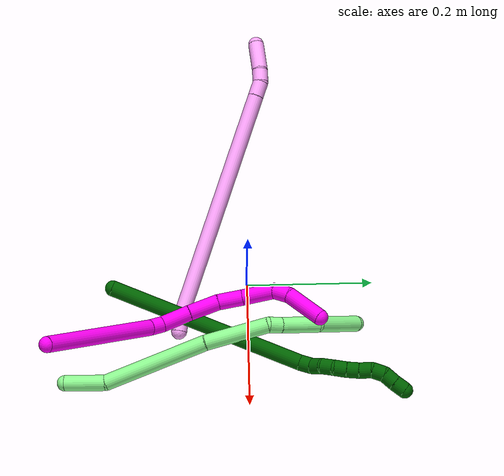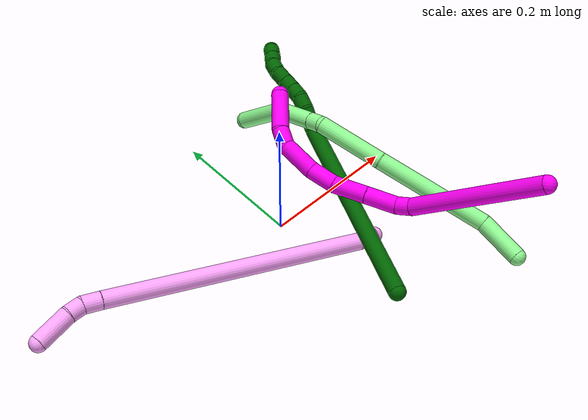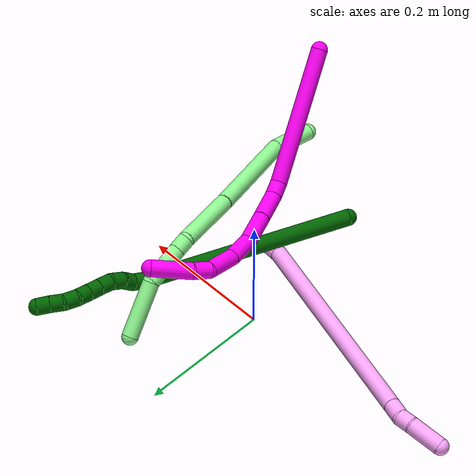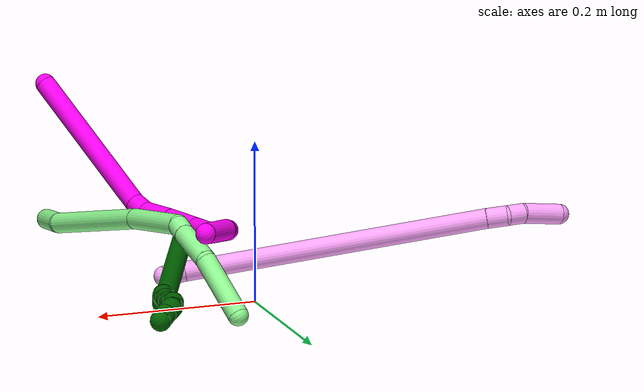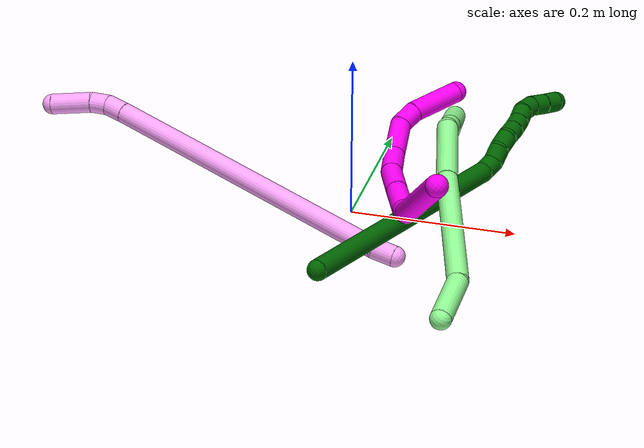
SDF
<sdf version="1.7">
 <world name="default">
  <model name="4">
   <static>0</static>
   <link name="4">
    <collision name="collision-cylinder-e_1_1_4">
     <pose>-0.010393 -0.003518 0.007599 0.433533 -0.892576 -0.209976</pose>
     <geometry><cylinder><radius>0.0125</radius><length>0.026695</length></cylinder></geometry>
     <surface>
      <friction><ode><mu>1.16</mu><mu2>1.16</mu2><slip1>0</slip1><slip2>0</slip2></ode></friction>
      <contact><ode><kp>1e+06</kp><kd>1</kd><max_vel>0</max_vel><min_depth>0.001</min_depth></ode></contact>
     </surface>
    </collision>
    <visual name="visual-cylinder-e_1_1_4">
     <pose>-0.010393 -0.003518 0.007599 0.433533 -0.892576 -0.209976</pose>
     <geometry><cylinder><radius>0.0125</radius><length>0.026695</length></cylinder></geometry>
     <material><ambient>1 0.65098 0.996078 1</ambient></material>
    </visual>
    <collision name="collision-cylinder-e_2_4_5">
     <pose>-0.185767 -0.036052 0.1007 0.327178 -1.07004 -0.19504</pose>
     <geometry><cylinder><radius>0.0125</radius><length>0.376142</length></cylinder></geometry>
     <surface>
      <friction><ode><mu>1.16</mu><mu2>1.16</mu2><slip1>0</slip1><slip2>0</slip2></ode></friction>
      <contact><ode><kp>1e+06</kp><kd>1</kd><max_vel>0</max_vel><min_depth>0.001</min_depth></ode></contact>
     </surface>
    </collision>
    <visual name="visual-cylinder-e_2_4_5">
     <pose>-0.185767 -0.036052 0.1007 0.327178 -1.07004 -0.19504</pose>
     <geometry><cylinder><radius>0.0125</radius><length>0.376142</length></cylinder></geometry>
     <material><ambient>1 0.65098 0.996078 1</ambient></material>
    </visual>
    <collision name="collision-cylinder-e_3_5_6">
     <pose>-0.36195 -0.06746 0.191699 0.410139 -1.07941 -0.247911</pose>
     <geometry><cylinder><radius>0.0125</radius><length>0.025415</length></cylinder></geometry>
     <surface>
      <friction><ode><mu>1.16</mu><mu2>1.16</mu2><slip1>0</slip1><slip2>0</slip2></ode></friction>
      <contact><ode><kp>1e+06</kp><kd>1</kd><max_vel>0</max_vel><min_depth>0.001</min_depth></ode></contact>
     </surface>
    </collision>
    <visual name="visual-cylinder-e_3_5_6">
     <pose>-0.36195 -0.06746 0.191699 0.410139 -1.07941 -0.247911</pose>
     <geometry><cylinder><radius>0.0125</radius><length>0.025415</length></cylinder></geometry>
     <material><ambient>1 0.65098 0.996078 1</ambient></material>
    </visual>
    <collision name="collision-cylinder-e_4_6_7">
     <pose>-0.380272 -0.07461 0.203436 0.651674 -0.736782 -0.259388</pose>
     <geometry><cylinder><radius>0.0125</radius><length>0.021188</length></cylinder></geometry>
     <surface>
      <friction><ode><mu>1.16</mu><mu2>1.16</mu2><slip1>0</slip1><slip2>0</slip2></ode></friction>
      <contact><ode><kp>1e+06</kp><kd>1</kd><max_vel>0</max_vel><min_depth>0.001</min_depth></ode></contact>
     </surface>
    </collision>
    <visual name="visual-cylinder-e_4_6_7">
     <pose>-0.380272 -0.07461 0.203436 0.651674 -0.736782 -0.259388</pose>
     <geometry><cylinder><radius>0.0125</radius><length>0.021188</length></cylinder></geometry>
     <material><ambient>1 0.65098 0.996078 1</ambient></material>
    </visual>
    <collision name="collision-cylinder-e_5_7_2">
     <pose>-0.402773 -0.09493 0.222337 0.887763 -0.654123 -0.319887</pose>
     <geometry><cylinder><radius>0.0125</radius><length>0.050561</length></cylinder></geometry>
     <surface>
      <friction><ode><mu>1.16</mu><mu2>1.16</mu2><slip1>0</slip1><slip2>0</slip2></ode></friction>
      <contact><ode><kp>1e+06</kp><kd>1</kd><max_vel>0</max_vel><min_depth>0.001</min_depth></ode></contact>
     </surface>
    </collision>
    <visual name="visual-cylinder-e_5_7_2">
     <pose>-0.402773 -0.09493 0.222337 0.887763 -0.654123 -0.319887</pose>
     <geometry><cylinder><radius>0.0125</radius><length>0.050561</length></cylinder></geometry>
     <material><ambient>1 0.65098 0.996078 1</ambient></material>
    </visual>
    <collision name="collision-sphere-2">
     <pose>-0.418155 -0.110491 0.234999 0 -0 0</pose>
     <geometry><sphere><radius>0.0125</radius></sphere></geometry>
     <surface>
      <friction><ode><mu>1.16</mu><mu2>1.16</mu2><slip1>0</slip1><slip2>0</slip2></ode></friction>
      <contact><ode><kp>1e+06</kp><kd>1</kd><max_vel>0</max_vel><min_depth>0.001</min_depth></ode></contact>
     </surface>
    </collision>
    <visual name="visual-sphere-2">
     <pose>-0.418155 -0.110491 0.234999 0 -0 0</pose>
     <geometry><sphere><radius>0.0125</radius></sphere></geometry>
     <material><ambient>1 0.65098 0.996078 1</ambient></material>
    </visual>
    <collision name="collision-sphere-7">
     <pose>-0.387391 -0.079369 0.209674 0 -0 0</pose>
     <geometry><sphere><radius>0.0125</radius></sphere></geometry>
     <surface>
      <friction><ode><mu>1.16</mu><mu2>1.16</mu2><slip1>0</slip1><slip2>0</slip2></ode></friction>
      <contact><ode><kp>1e+06</kp><kd>1</kd><max_vel>0</max_vel><min_depth>0.001</min_depth></ode></contact>
     </surface>
    </collision>
    <visual name="visual-sphere-7">
     <pose>-0.387391 -0.079369 0.209674 0 -0 0</pose>
     <geometry><sphere><radius>0.0125</radius></sphere></geometry>
     <material><ambient>1 0.65098 0.996078 1</ambient></material>
    </visual>
    <collision name="collision-sphere-6">
     <pose>-0.373154 -0.069851 0.197198 0 -0 0</pose>
     <geometry><sphere><radius>0.0125</radius></sphere></geometry>
     <surface>
      <friction><ode><mu>1.16</mu><mu2>1.16</mu2><slip1>0</slip1><slip2>0</slip2></ode></friction>
      <contact><ode><kp>1e+06</kp><kd>1</kd><max_vel>0</max_vel><min_depth>0.001</min_depth></ode></contact>
     </surface>
    </collision>
    <visual name="visual-sphere-6">
     <pose>-0.373154 -0.069851 0.197198 0 -0 0</pose>
     <geometry><sphere><radius>0.0125</radius></sphere></geometry>
     <material><ambient>1 0.65098 0.996078 1</ambient></material>
    </visual>
    <collision name="collision-sphere-5">
     <pose>-0.350746 -0.065069 0.1862 0 -0 0</pose>
     <geometry><sphere><radius>0.0125</radius></sphere></geometry>
     <surface>
      <friction><ode><mu>1.16</mu><mu2>1.16</mu2><slip1>0</slip1><slip2>0</slip2></ode></friction>
      <contact><ode><kp>1e+06</kp><kd>1</kd><max_vel>0</max_vel><min_depth>0.001</min_depth></ode></contact>
     </surface>
    </collision>
    <visual name="visual-sphere-5">
     <pose>-0.350746 -0.065069 0.1862 0 -0 0</pose>
     <geometry><sphere><radius>0.0125</radius></sphere></geometry>
     <material><ambient>1 0.65098 0.996078 1</ambient></material>
    </visual>
    <collision name="collision-sphere-1">
     <geometry><sphere><radius>0.0125</radius></sphere></geometry>
     <surface>
      <friction><ode><mu>1.16</mu><mu2>1.16</mu2><slip1>0</slip1><slip2>0</slip2></ode></friction>
      <contact><ode><kp>1e+06</kp><kd>1</kd><max_vel>0</max_vel><min_depth>0.001</min_depth></ode></contact>
     </surface>
    </collision>
    <visual name="visual-sphere-1">
     <geometry><sphere><radius>0.0125</radius></sphere></geometry>
     <material><ambient>1 0.65098 0.996078 1</ambient></material>
    </visual>
    <collision name="collision-sphere-4">
     <pose>-0.020787 -0.007036 0.015199 0 -0 0</pose>
     <geometry><sphere><radius>0.0125</radius></sphere></geometry>
     <surface>
      <friction><ode><mu>1.16</mu><mu2>1.16</mu2><slip1>0</slip1><slip2>0</slip2></ode></friction>
      <contact><ode><kp>1e+06</kp><kd>1</kd><max_vel>0</max_vel><min_depth>0.001</min_depth></ode></contact>
     </surface>
    </collision>
    <visual name="visual-sphere-4">
     <pose>-0.020787 -0.007036 0.015199 0 -0 0</pose>
     <geometry><sphere><radius>0.0125</radius></sphere></geometry>
     <material><ambient>1 0.65098 0.996078 1</ambient></material>
    </visual>
    <inertial>
     <pose>-0.215545 -0.0435 0.117008 0 -0 0</pose>
     <mass>0.5</mass>
     <inertia>
      <ixx>0.001658</ixx>
      <ixy>0</ixy>
      <ixz>0</ixz>
      <iyy>0.003966</iyy>
      <iyz>0</iyz>
      <izz>0.004631</izz>
     </inertia>
    </inertial>
   </link>
   <pose>0.080369 -0.109373 0.011903 0.844909 -0.009752 -0.812643</pose>
  </model>
  <model name="6">
   <static>0</static>
   <link name="6">
    <collision name="collision-cylinder-e_1_1_4">
     <pose>0.077973 0.127933 0.055223 -1.1633 0.510166 -0.339618</pose>
     <geometry><cylinder><radius>0.0125</radius><length>0.319351</length></cylinder></geometry>
     <surface>
      <friction><ode><mu>1.16</mu><mu2>1.16</mu2><slip1>0</slip1><slip2>0</slip2></ode></friction>
      <contact><ode><kp>1e+06</kp><kd>1</kd><max_vel>0</max_vel><min_depth>0.001</min_depth></ode></contact>
     </surface>
    </collision>
    <visual name="visual-cylinder-e_1_1_4">
     <pose>0.077973 0.127933 0.055223 -1.1633 0.510166 -0.339618</pose>
     <geometry><cylinder><radius>0.0125</radius><length>0.319351</length></cylinder></geometry>
     <material><ambient>0 0.392157 0.003922 1</ambient></material>
    </visual>
    <collision name="collision-cylinder-e_2_4_5">
     <pose>0.158961 0.2642 0.115551 -1.0212 0.299256 -0.16849</pose>
     <geometry><cylinder><radius>0.0125</radius><length>0.020455</length></cylinder></geometry>
     <surface>
      <friction><ode><mu>1.16</mu><mu2>1.16</mu2><slip1>0</slip1><slip2>0</slip2></ode></friction>
      <contact><ode><kp>1e+06</kp><kd>1</kd><max_vel>0</max_vel><min_depth>0.001</min_depth></ode></contact>
     </surface>
    </collision>
    <visual name="visual-cylinder-e_2_4_5">
     <pose>0.158961 0.2642 0.115551 -1.0212 0.299256 -0.16849</pose>
     <geometry><cylinder><radius>0.0125</radius><length>0.020455</length></cylinder></geometry>
     <material><ambient>0 0.392157 0.003922 1</ambient></material>
    </visual>
    <collision name="collision-cylinder-e_3_5_6">
     <pose>0.160677 0.279816 0.127507 -0.815898 -0.129256 0.055927</pose>
     <geometry><cylinder><radius>0.0125</radius><length>0.020165</length></cylinder></geometry>
     <surface>
      <friction><ode><mu>1.16</mu><mu2>1.16</mu2><slip1>0</slip1><slip2>0</slip2></ode></friction>
      <contact><ode><kp>1e+06</kp><kd>1</kd><max_vel>0</max_vel><min_depth>0.001</min_depth></ode></contact>
     </surface>
    </collision>
    <visual name="visual-cylinder-e_3_5_6">
     <pose>0.160677 0.279816 0.127507 -0.815898 -0.129256 0.055927</pose>
     <geometry><cylinder><radius>0.0125</radius><length>0.020165</length></cylinder></geometry>
     <material><ambient>0 0.392157 0.003922 1</ambient></material>
    </visual>
    <collision name="collision-cylinder-e_4_6_7">
     <pose>0.160608 0.295505 0.139634 -1.01032 0.123347 -0.068274</pose>
     <geometry><cylinder><radius>0.0125</radius><length>0.020001</length></cylinder></geometry>
     <surface>
      <friction><ode><mu>1.16</mu><mu2>1.16</mu2><slip1>0</slip1><slip2>0</slip2></ode></friction>
      <contact><ode><kp>1e+06</kp><kd>1</kd><max_vel>0</max_vel><min_depth>0.001</min_depth></ode></contact>
     </surface>
    </collision>
    <visual name="visual-cylinder-e_4_6_7">
     <pose>0.160608 0.295505 0.139634 -1.01032 0.123347 -0.068274</pose>
     <geometry><cylinder><radius>0.0125</radius><length>0.020001</length></cylinder></geometry>
     <material><ambient>0 0.392157 0.003922 1</ambient></material>
    </visual>
    <collision name="collision-cylinder-e_5_7_8">
     <pose>0.165028 0.31305 0.147424 -1.30231 0.324573 -0.248245</pose>
     <geometry><cylinder><radius>0.0125</radius><length>0.020002</length></cylinder></geometry>
     <surface>
      <friction><ode><mu>1.16</mu><mu2>1.16</mu2><slip1>0</slip1><slip2>0</slip2></ode></friction>
      <contact><ode><kp>1e+06</kp><kd>1</kd><max_vel>0</max_vel><min_depth>0.001</min_depth></ode></contact>
     </surface>
    </collision>
    <visual name="visual-cylinder-e_5_7_8">
     <pose>0.165028 0.31305 0.147424 -1.30231 0.324573 -0.248245</pose>
     <geometry><cylinder><radius>0.0125</radius><length>0.020002</length></cylinder></geometry>
     <material><ambient>0 0.392157 0.003922 1</ambient></material>
    </visual>
    <collision name="collision-cylinder-e_6_8_9">
     <pose>0.170584 0.331593 0.152403 -1.31445 0.238869 -0.184682</pose>
     <geometry><cylinder><radius>0.0125</radius><length>0.020011</length></cylinder></geometry>
     <surface>
      <friction><ode><mu>1.16</mu><mu2>1.16</mu2><slip1>0</slip1><slip2>0</slip2></ode></friction>
      <contact><ode><kp>1e+06</kp><kd>1</kd><max_vel>0</max_vel><min_depth>0.001</min_depth></ode></contact>
     </surface>
    </collision>
    <visual name="visual-cylinder-e_6_8_9">
     <pose>0.170584 0.331593 0.152403 -1.31445 0.238869 -0.184682</pose>
     <geometry><cylinder><radius>0.0125</radius><length>0.020011</length></cylinder></geometry>
     <material><ambient>0 0.392157 0.003922 1</ambient></material>
    </visual>
    <collision name="collision-cylinder-e_7_9_10">
     <pose>0.173949 0.350547 0.157663 -1.28612 0.099885 -0.074872</pose>
     <geometry><cylinder><radius>0.0125</radius><length>0.020001</length></cylinder></geometry>
     <surface>
      <friction><ode><mu>1.16</mu><mu2>1.16</mu2><slip1>0</slip1><slip2>0</slip2></ode></friction>
      <contact><ode><kp>1e+06</kp><kd>1</kd><max_vel>0</max_vel><min_depth>0.001</min_depth></ode></contact>
     </surface>
    </collision>
    <visual name="visual-cylinder-e_7_9_10">
     <pose>0.173949 0.350547 0.157663 -1.28612 0.099885 -0.074872</pose>
     <geometry><cylinder><radius>0.0125</radius><length>0.020001</length></cylinder></geometry>
     <material><ambient>0 0.392157 0.003922 1</ambient></material>
    </visual>
    <collision name="collision-cylinder-e_8_10_11">
     <pose>0.17945 0.368396 0.163769 -1.19116 0.466895 -0.319527</pose>
     <geometry><cylinder><radius>0.0125</radius><length>0.020013</length></cylinder></geometry>
     <surface>
      <friction><ode><mu>1.16</mu><mu2>1.16</mu2><slip1>0</slip1><slip2>0</slip2></ode></friction>
      <contact><ode><kp>1e+06</kp><kd>1</kd><max_vel>0</max_vel><min_depth>0.001</min_depth></ode></contact>
     </surface>
    </collision>
    <visual name="visual-cylinder-e_8_10_11">
     <pose>0.17945 0.368396 0.163769 -1.19116 0.466895 -0.319527</pose>
     <geometry><cylinder><radius>0.0125</radius><length>0.020013</length></cylinder></geometry>
     <material><ambient>0 0.392157 0.003922 1</ambient></material>
    </visual>
    <collision name="collision-cylinder-e_9_11_12">
     <pose>0.191051 0.38233 0.171309 -0.926928 0.789092 -0.410332</pose>
     <geometry><cylinder><radius>0.0125</radius><length>0.02</length></cylinder></geometry>
     <surface>
      <friction><ode><mu>1.16</mu><mu2>1.16</mu2><slip1>0</slip1><slip2>0</slip2></ode></friction>
      <contact><ode><kp>1e+06</kp><kd>1</kd><max_vel>0</max_vel><min_depth>0.001</min_depth></ode></contact>
     </surface>
    </collision>
    <visual name="visual-cylinder-e_9_11_12">
     <pose>0.191051 0.38233 0.171309 -0.926928 0.789092 -0.410332</pose>
     <geometry><cylinder><radius>0.0125</radius><length>0.02</length></cylinder></geometry>
     <material><ambient>0 0.392157 0.003922 1</ambient></material>
    </visual>
    <collision name="collision-cylinder-e_10_12_2">
     <pose>0.204884 0.394287 0.179367 -1.0263 0.739001 -0.42974</pose>
     <geometry><cylinder><radius>0.0125</radius><length>0.020001</length></cylinder></geometry>
     <surface>
      <friction><ode><mu>1.16</mu><mu2>1.16</mu2><slip1>0</slip1><slip2>0</slip2></ode></friction>
      <contact><ode><kp>1e+06</kp><kd>1</kd><max_vel>0</max_vel><min_depth>0.001</min_depth></ode></contact>
     </surface>
    </collision>
    <visual name="visual-cylinder-e_10_12_2">
     <pose>0.204884 0.394287 0.179367 -1.0263 0.739001 -0.42974</pose>
     <geometry><cylinder><radius>0.0125</radius><length>0.020001</length></cylinder></geometry>
     <material><ambient>0 0.392157 0.003922 1</ambient></material>
    </visual>
    <collision name="collision-sphere-2">
     <pose>0.21162 0.40061 0.183196 0 -0 0</pose>
     <geometry><sphere><radius>0.0125</radius></sphere></geometry>
     <surface>
      <friction><ode><mu>1.16</mu><mu2>1.16</mu2><slip1>0</slip1><slip2>0</slip2></ode></friction>
      <contact><ode><kp>1e+06</kp><kd>1</kd><max_vel>0</max_vel><min_depth>0.001</min_depth></ode></contact>
     </surface>
    </collision>
    <visual name="visual-sphere-2">
     <pose>0.21162 0.40061 0.183196 0 -0 0</pose>
     <geometry><sphere><radius>0.0125</radius></sphere></geometry>
     <material><ambient>0 0.392157 0.003922 1</ambient></material>
    </visual>
    <collision name="collision-sphere-12">
     <pose>0.198149 0.387964 0.175538 0 -0 0</pose>
     <geometry><sphere><radius>0.0125</radius></sphere></geometry>
     <surface>
      <friction><ode><mu>1.16</mu><mu2>1.16</mu2><slip1>0</slip1><slip2>0</slip2></ode></friction>
      <contact><ode><kp>1e+06</kp><kd>1</kd><max_vel>0</max_vel><min_depth>0.001</min_depth></ode></contact>
     </surface>
    </collision>
    <visual name="visual-sphere-12">
     <pose>0.198149 0.387964 0.175538 0 -0 0</pose>
     <geometry><sphere><radius>0.0125</radius></sphere></geometry>
     <material><ambient>0 0.392157 0.003922 1</ambient></material>
    </visual>
    <collision name="collision-sphere-11">
     <pose>0.183954 0.376695 0.16708 0 -0 0</pose>
     <geometry><sphere><radius>0.0125</radius></sphere></geometry>
     <surface>
      <friction><ode><mu>1.16</mu><mu2>1.16</mu2><slip1>0</slip1><slip2>0</slip2></ode></friction>
      <contact><ode><kp>1e+06</kp><kd>1</kd><max_vel>0</max_vel><min_depth>0.001</min_depth></ode></contact>
     </surface>
    </collision>
    <visual name="visual-sphere-11">
     <pose>0.183954 0.376695 0.16708 0 -0 0</pose>
     <geometry><sphere><radius>0.0125</radius></sphere></geometry>
     <material><ambient>0 0.392157 0.003922 1</ambient></material>
    </visual>
    <collision name="collision-sphere-10">
     <pose>0.174946 0.360097 0.160457 0 -0 0</pose>
     <geometry><sphere><radius>0.0125</radius></sphere></geometry>
     <surface>
      <friction><ode><mu>1.16</mu><mu2>1.16</mu2><slip1>0</slip1><slip2>0</slip2></ode></friction>
      <contact><ode><kp>1e+06</kp><kd>1</kd><max_vel>0</max_vel><min_depth>0.001</min_depth></ode></contact>
     </surface>
    </collision>
    <visual name="visual-sphere-10">
     <pose>0.174946 0.360097 0.160457 0 -0 0</pose>
     <geometry><sphere><radius>0.0125</radius></sphere></geometry>
     <material><ambient>0 0.392157 0.003922 1</ambient></material>
    </visual>
    <collision name="collision-sphere-9">
     <pose>0.172951 0.340997 0.154868 0 -0 0</pose>
     <geometry><sphere><radius>0.0125</radius></sphere></geometry>
     <surface>
      <friction><ode><mu>1.16</mu><mu2>1.16</mu2><slip1>0</slip1><slip2>0</slip2></ode></friction>
      <contact><ode><kp>1e+06</kp><kd>1</kd><max_vel>0</max_vel><min_depth>0.001</min_depth></ode></contact>
     </surface>
    </collision>
    <visual name="visual-sphere-9">
     <pose>0.172951 0.340997 0.154868 0 -0 0</pose>
     <geometry><sphere><radius>0.0125</radius></sphere></geometry>
     <material><ambient>0 0.392157 0.003922 1</ambient></material>
    </visual>
    <collision name="collision-sphere-4">
     <pose>0.155946 0.255867 0.110446 0 -0 0</pose>
     <geometry><sphere><radius>0.0125</radius></sphere></geometry>
     <surface>
      <friction><ode><mu>1.16</mu><mu2>1.16</mu2><slip1>0</slip1><slip2>0</slip2></ode></friction>
      <contact><ode><kp>1e+06</kp><kd>1</kd><max_vel>0</max_vel><min_depth>0.001</min_depth></ode></contact>
     </surface>
    </collision>
    <visual name="visual-sphere-4">
     <pose>0.155946 0.255867 0.110446 0 -0 0</pose>
     <geometry><sphere><radius>0.0125</radius></sphere></geometry>
     <material><ambient>0 0.392157 0.003922 1</ambient></material>
    </visual>
    <collision name="collision-sphere-1">
     <geometry><sphere><radius>0.0125</radius></sphere></geometry>
     <surface>
      <friction><ode><mu>1.16</mu><mu2>1.16</mu2><slip1>0</slip1><slip2>0</slip2></ode></friction>
      <contact><ode><kp>1e+06</kp><kd>1</kd><max_vel>0</max_vel><min_depth>0.001</min_depth></ode></contact>
     </surface>
    </collision>
    <visual name="visual-sphere-1">
     <geometry><sphere><radius>0.0125</radius></sphere></geometry>
     <material><ambient>0 0.392157 0.003922 1</ambient></material>
    </visual>
    <collision name="collision-sphere-8">
     <pose>0.168217 0.322189 0.149938 0 -0 0</pose>
     <geometry><sphere><radius>0.0125</radius></sphere></geometry>
     <surface>
      <friction><ode><mu>1.16</mu><mu2>1.16</mu2><slip1>0</slip1><slip2>0</slip2></ode></friction>
      <contact><ode><kp>1e+06</kp><kd>1</kd><max_vel>0</max_vel><min_depth>0.001</min_depth></ode></contact>
     </surface>
    </collision>
    <visual name="visual-sphere-8">
     <pose>0.168217 0.322189 0.149938 0 -0 0</pose>
     <geometry><sphere><radius>0.0125</radius></sphere></geometry>
     <material><ambient>0 0.392157 0.003922 1</ambient></material>
    </visual>
    <collision name="collision-sphere-5">
     <pose>0.161977 0.272534 0.120656 0 -0 0</pose>
     <geometry><sphere><radius>0.0125</radius></sphere></geometry>
     <surface>
      <friction><ode><mu>1.16</mu><mu2>1.16</mu2><slip1>0</slip1><slip2>0</slip2></ode></friction>
      <contact><ode><kp>1e+06</kp><kd>1</kd><max_vel>0</max_vel><min_depth>0.001</min_depth></ode></contact>
     </surface>
    </collision>
    <visual name="visual-sphere-5">
     <pose>0.161977 0.272534 0.120656 0 -0 0</pose>
     <geometry><sphere><radius>0.0125</radius></sphere></geometry>
     <material><ambient>0 0.392157 0.003922 1</ambient></material>
    </visual>
    <collision name="collision-sphere-6">
     <pose>0.159377 0.287099 0.134358 0 -0 0</pose>
     <geometry><sphere><radius>0.0125</radius></sphere></geometry>
     <surface>
      <friction><ode><mu>1.16</mu><mu2>1.16</mu2><slip1>0</slip1><slip2>0</slip2></ode></friction>
      <contact><ode><kp>1e+06</kp><kd>1</kd><max_vel>0</max_vel><min_depth>0.001</min_depth></ode></contact>
     </surface>
    </collision>
    <visual name="visual-sphere-6">
     <pose>0.159377 0.287099 0.134358 0 -0 0</pose>
     <geometry><sphere><radius>0.0125</radius></sphere></geometry>
     <material><ambient>0 0.392157 0.003922 1</ambient></material>
    </visual>
    <collision name="collision-sphere-7">
     <pose>0.161838 0.303911 0.14491 0 -0 0</pose>
     <geometry><sphere><radius>0.0125</radius></sphere></geometry>
     <surface>
      <friction><ode><mu>1.16</mu><mu2>1.16</mu2><slip1>0</slip1><slip2>0</slip2></ode></friction>
      <contact><ode><kp>1e+06</kp><kd>1</kd><max_vel>0</max_vel><min_depth>0.001</min_depth></ode></contact>
     </surface>
    </collision>
    <visual name="visual-sphere-7">
     <pose>0.161838 0.303911 0.14491 0 -0 0</pose>
     <geometry><sphere><radius>0.0125</radius></sphere></geometry>
     <material><ambient>0 0.392157 0.003922 1</ambient></material>
    </visual>
    <inertial>
     <pose>0.112617 0.201253 0.089612 0 -0 0</pose>
     <mass>0.5</mass>
     <inertia>
      <ixx>0.001477</ixx>
      <ixy>0</ixy>
      <ixz>0</ixz>
      <iyy>0.000669</iyy>
      <iyz>0</iyz>
      <izz>-0.003516</izz>
     </inertia>
    </inertial>
   </link>
   <pose>0.016632 -0.212682 0.042211 0.129451 0.777028 0.312955</pose>
  </model>
  <model name="10">
   <static>0</static>
   <link name="10">
    <collision name="collision-cylinder-e_1_1_4">
     <pose>-0.033069 0.090934 -0.033218 -1.92103 -0.329153 0.46632</pose>
     <geometry><cylinder><radius>0.0125</radius><length>0.204607</length></cylinder></geometry>
     <surface>
      <friction><ode><mu>1.16</mu><mu2>1.16</mu2><slip1>0</slip1><slip2>0</slip2></ode></friction>
      <contact><ode><kp>1e+06</kp><kd>1</kd><max_vel>0</max_vel><min_depth>0.001</min_depth></ode></contact>
     </surface>
    </collision>
    <visual name="visual-cylinder-e_1_1_4">
     <pose>-0.033069 0.090934 -0.033218 -1.92103 -0.329153 0.46632</pose>
     <geometry><cylinder><radius>0.0125</radius><length>0.204607</length></cylinder></geometry>
     <material><ambient>1 0 0.964706 1</ambient></material>
    </visual>
    <collision name="collision-cylinder-e_2_4_5">
     <pose>-0.071653 0.191394 -0.067666 -1.69924 -0.521275 0.589085</pose>
     <geometry><cylinder><radius>0.0125</radius><length>0.022152</length></cylinder></geometry>
     <surface>
      <friction><ode><mu>1.16</mu><mu2>1.16</mu2><slip1>0</slip1><slip2>0</slip2></ode></friction>
      <contact><ode><kp>1e+06</kp><kd>1</kd><max_vel>0</max_vel><min_depth>0.001</min_depth></ode></contact>
     </surface>
    </collision>
    <visual name="visual-cylinder-e_2_4_5">
     <pose>-0.071653 0.191394 -0.067666 -1.69924 -0.521275 0.589085</pose>
     <geometry><cylinder><radius>0.0125</radius><length>0.022152</length></cylinder></geometry>
     <material><ambient>1 0 0.964706 1</ambient></material>
    </visual>
    <collision name="collision-cylinder-e_3_5_6">
     <pose>-0.092792 0.217107 -0.065337 -1.35439 -0.755886 0.617998</pose>
     <geometry><cylinder><radius>0.0125</radius><length>0.045554</length></cylinder></geometry>
     <surface>
      <friction><ode><mu>1.16</mu><mu2>1.16</mu2><slip1>0</slip1><slip2>0</slip2></ode></friction>
      <contact><ode><kp>1e+06</kp><kd>1</kd><max_vel>0</max_vel><min_depth>0.001</min_depth></ode></contact>
     </surface>
    </collision>
    <visual name="visual-cylinder-e_3_5_6">
     <pose>-0.092792 0.217107 -0.065337 -1.35439 -0.755886 0.617998</pose>
     <geometry><cylinder><radius>0.0125</radius><length>0.045554</length></cylinder></geometry>
     <material><ambient>1 0 0.964706 1</ambient></material>
    </visual>
    <collision name="collision-cylinder-e_4_6_7">
     <pose>-0.124292 0.251066 -0.058223 -1.37336 -0.719399 0.598074</pose>
     <geometry><cylinder><radius>0.0125</radius><length>0.048189</length></cylinder></geometry>
     <surface>
      <friction><ode><mu>1.16</mu><mu2>1.16</mu2><slip1>0</slip1><slip2>0</slip2></ode></friction>
      <contact><ode><kp>1e+06</kp><kd>1</kd><max_vel>0</max_vel><min_depth>0.001</min_depth></ode></contact>
     </surface>
    </collision>
    <visual name="visual-cylinder-e_4_6_7">
     <pose>-0.124292 0.251066 -0.058223 -1.37336 -0.719399 0.598074</pose>
     <geometry><cylinder><radius>0.0125</radius><length>0.048189</length></cylinder></geometry>
     <material><ambient>1 0 0.964706 1</ambient></material>
    </visual>
    <collision name="collision-cylinder-e_5_7_8">
     <pose>-0.151053 0.28395 -0.047744 -1.14118 -0.57976 0.378299</pose>
     <geometry><cylinder><radius>0.0125</radius><length>0.039739</length></cylinder></geometry>
     <surface>
      <friction><ode><mu>1.16</mu><mu2>1.16</mu2><slip1>0</slip1><slip2>0</slip2></ode></friction>
      <contact><ode><kp>1e+06</kp><kd>1</kd><max_vel>0</max_vel><min_depth>0.001</min_depth></ode></contact>
     </surface>
    </collision>
    <visual name="visual-cylinder-e_5_7_8">
     <pose>-0.151053 0.28395 -0.047744 -1.14118 -0.57976 0.378299</pose>
     <geometry><cylinder><radius>0.0125</radius><length>0.039739</length></cylinder></geometry>
     <material><ambient>1 0 0.964706 1</ambient></material>
    </visual>
    <collision name="collision-cylinder-e_6_8_9">
     <pose>-0.176506 0.314614 -0.026577 -0.829249 -0.604517 0.272779</pose>
     <geometry><cylinder><radius>0.0125</radius><length>0.051262</length></cylinder></geometry>
     <surface>
      <friction><ode><mu>1.16</mu><mu2>1.16</mu2><slip1>0</slip1><slip2>0</slip2></ode></friction>
      <contact><ode><kp>1e+06</kp><kd>1</kd><max_vel>0</max_vel><min_depth>0.001</min_depth></ode></contact>
     </surface>
    </collision>
    <visual name="visual-cylinder-e_6_8_9">
     <pose>-0.176506 0.314614 -0.026577 -0.829249 -0.604517 0.272779</pose>
     <geometry><cylinder><radius>0.0125</radius><length>0.051262</length></cylinder></geometry>
     <material><ambient>1 0 0.964706 1</ambient></material>
    </visual>
    <collision name="collision-cylinder-e_7_9_10">
     <pose>-0.192728 0.338331 -0.002143 -0.675558 -0.125987 0.044303</pose>
     <geometry><cylinder><radius>0.0125</radius><length>0.026325</length></cylinder></geometry>
     <surface>
      <friction><ode><mu>1.16</mu><mu2>1.16</mu2><slip1>0</slip1><slip2>0</slip2></ode></friction>
      <contact><ode><kp>1e+06</kp><kd>1</kd><max_vel>0</max_vel><min_depth>0.001</min_depth></ode></contact>
     </surface>
    </collision>
    <visual name="visual-cylinder-e_7_9_10">
     <pose>-0.192728 0.338331 -0.002143 -0.675558 -0.125987 0.044303</pose>
     <geometry><cylinder><radius>0.0125</radius><length>0.026325</length></cylinder></geometry>
     <material><ambient>1 0 0.964706 1</ambient></material>
    </visual>
    <collision name="collision-cylinder-e_8_10_2">
     <pose>-0.188626 0.365308 0.032117 -0.663388 0.186225 -0.064303</pose>
     <geometry><cylinder><radius>0.0125</radius><length>0.062172</length></cylinder></geometry>
     <surface>
      <friction><ode><mu>1.16</mu><mu2>1.16</mu2><slip1>0</slip1><slip2>0</slip2></ode></friction>
      <contact><ode><kp>1e+06</kp><kd>1</kd><max_vel>0</max_vel><min_depth>0.001</min_depth></ode></contact>
     </surface>
    </collision>
    <visual name="visual-cylinder-e_8_10_2">
     <pose>-0.188626 0.365308 0.032117 -0.663388 0.186225 -0.064303</pose>
     <geometry><cylinder><radius>0.0125</radius><length>0.062172</length></cylinder></geometry>
     <material><ambient>1 0 0.964706 1</ambient></material>
    </visual>
    <collision name="collision-sphere-2">
     <pose>-0.182871 0.38412 0.056187 0 -0 0</pose>
     <geometry><sphere><radius>0.0125</radius></sphere></geometry>
     <surface>
      <friction><ode><mu>1.16</mu><mu2>1.16</mu2><slip1>0</slip1><slip2>0</slip2></ode></friction>
      <contact><ode><kp>1e+06</kp><kd>1</kd><max_vel>0</max_vel><min_depth>0.001</min_depth></ode></contact>
     </surface>
    </collision>
    <visual name="visual-sphere-2">
     <pose>-0.182871 0.38412 0.056187 0 -0 0</pose>
     <geometry><sphere><radius>0.0125</radius></sphere></geometry>
     <material><ambient>1 0 0.964706 1</ambient></material>
    </visual>
    <collision name="collision-sphere-10">
     <pose>-0.194382 0.346497 0.008048 0 -0 0</pose>
     <geometry><sphere><radius>0.0125</radius></sphere></geometry>
     <surface>
      <friction><ode><mu>1.16</mu><mu2>1.16</mu2><slip1>0</slip1><slip2>0</slip2></ode></friction>
      <contact><ode><kp>1e+06</kp><kd>1</kd><max_vel>0</max_vel><min_depth>0.001</min_depth></ode></contact>
     </surface>
    </collision>
    <visual name="visual-sphere-10">
     <pose>-0.194382 0.346497 0.008048 0 -0 0</pose>
     <geometry><sphere><radius>0.0125</radius></sphere></geometry>
     <material><ambient>1 0 0.964706 1</ambient></material>
    </visual>
    <collision name="collision-sphere-9">
     <pose>-0.191074 0.330165 -0.012333 0 -0 0</pose>
     <geometry><sphere><radius>0.0125</radius></sphere></geometry>
     <surface>
      <friction><ode><mu>1.16</mu><mu2>1.16</mu2><slip1>0</slip1><slip2>0</slip2></ode></friction>
      <contact><ode><kp>1e+06</kp><kd>1</kd><max_vel>0</max_vel><min_depth>0.001</min_depth></ode></contact>
     </surface>
    </collision>
    <visual name="visual-sphere-9">
     <pose>-0.191074 0.330165 -0.012333 0 -0 0</pose>
     <geometry><sphere><radius>0.0125</radius></sphere></geometry>
     <material><ambient>1 0 0.964706 1</ambient></material>
    </visual>
    <collision name="collision-sphere-4">
     <pose>-0.066137 0.181869 -0.066435 0 -0 0</pose>
     <geometry><sphere><radius>0.0125</radius></sphere></geometry>
     <surface>
      <friction><ode><mu>1.16</mu><mu2>1.16</mu2><slip1>0</slip1><slip2>0</slip2></ode></friction>
      <contact><ode><kp>1e+06</kp><kd>1</kd><max_vel>0</max_vel><min_depth>0.001</min_depth></ode></contact>
     </surface>
    </collision>
    <visual name="visual-sphere-4">
     <pose>-0.066137 0.181869 -0.066435 0 -0 0</pose>
     <geometry><sphere><radius>0.0125</radius></sphere></geometry>
     <material><ambient>1 0 0.964706 1</ambient></material>
    </visual>
    <collision name="collision-sphere-1">
     <geometry><sphere><radius>0.0125</radius></sphere></geometry>
     <surface>
      <friction><ode><mu>1.16</mu><mu2>1.16</mu2><slip1>0</slip1><slip2>0</slip2></ode></friction>
      <contact><ode><kp>1e+06</kp><kd>1</kd><max_vel>0</max_vel><min_depth>0.001</min_depth></ode></contact>
     </surface>
    </collision>
    <visual name="visual-sphere-1">
     <geometry><sphere><radius>0.0125</radius></sphere></geometry>
     <material><ambient>1 0 0.964706 1</ambient></material>
    </visual>
    <collision name="collision-sphere-8">
     <pose>-0.161938 0.299062 -0.040821 0 -0 0</pose>
     <geometry><sphere><radius>0.0125</radius></sphere></geometry>
     <surface>
      <friction><ode><mu>1.16</mu><mu2>1.16</mu2><slip1>0</slip1><slip2>0</slip2></ode></friction>
      <contact><ode><kp>1e+06</kp><kd>1</kd><max_vel>0</max_vel><min_depth>0.001</min_depth></ode></contact>
     </surface>
    </collision>
    <visual name="visual-sphere-8">
     <pose>-0.161938 0.299062 -0.040821 0 -0 0</pose>
     <geometry><sphere><radius>0.0125</radius></sphere></geometry>
     <material><ambient>1 0 0.964706 1</ambient></material>
    </visual>
    <collision name="collision-sphere-5">
     <pose>-0.077169 0.20092 -0.068896 0 -0 0</pose>
     <geometry><sphere><radius>0.0125</radius></sphere></geometry>
     <surface>
      <friction><ode><mu>1.16</mu><mu2>1.16</mu2><slip1>0</slip1><slip2>0</slip2></ode></friction>
      <contact><ode><kp>1e+06</kp><kd>1</kd><max_vel>0</max_vel><min_depth>0.001</min_depth></ode></contact>
     </surface>
    </collision>
    <visual name="visual-sphere-5">
     <pose>-0.077169 0.20092 -0.068896 0 -0 0</pose>
     <geometry><sphere><radius>0.0125</radius></sphere></geometry>
     <material><ambient>1 0 0.964706 1</ambient></material>
    </visual>
    <collision name="collision-sphere-6">
     <pose>-0.108415 0.233295 -0.061778 0 -0 0</pose>
     <geometry><sphere><radius>0.0125</radius></sphere></geometry>
     <surface>
      <friction><ode><mu>1.16</mu><mu2>1.16</mu2><slip1>0</slip1><slip2>0</slip2></ode></friction>
      <contact><ode><kp>1e+06</kp><kd>1</kd><max_vel>0</max_vel><min_depth>0.001</min_depth></ode></contact>
     </surface>
    </collision>
    <visual name="visual-sphere-6">
     <pose>-0.108415 0.233295 -0.061778 0 -0 0</pose>
     <geometry><sphere><radius>0.0125</radius></sphere></geometry>
     <material><ambient>1 0 0.964706 1</ambient></material>
    </visual>
    <collision name="collision-sphere-7">
     <pose>-0.140168 0.268838 -0.054668 0 -0 0</pose>
     <geometry><sphere><radius>0.0125</radius></sphere></geometry>
     <surface>
      <friction><ode><mu>1.16</mu><mu2>1.16</mu2><slip1>0</slip1><slip2>0</slip2></ode></friction>
      <contact><ode><kp>1e+06</kp><kd>1</kd><max_vel>0</max_vel><min_depth>0.001</min_depth></ode></contact>
     </surface>
    </collision>
    <visual name="visual-sphere-7">
     <pose>-0.140168 0.268838 -0.054668 0 -0 0</pose>
     <geometry><sphere><radius>0.0125</radius></sphere></geometry>
     <material><ambient>1 0 0.964706 1</ambient></material>
    </visual>
    <inertial>
     <pose>-0.100843 0.207729 -0.030794 0 -0 0</pose>
     <mass>0.5</mass>
     <inertia>
      <ixx>0.000971</ixx>
      <ixy>0</ixy>
      <ixz>0</ixz>
      <iyy>0.000273</iyy>
      <iyz>0</iyz>
      <izz>-0.000427</izz>
     </inertia>
    </inertial>
   </link>
   <pose>0.169668 -0.302922 0.218959 -0.640768 0.409411 -0.448661</pose>
  </model>
  <model name="13">
   <static>0</static>
   <link name="13">
    <collision name="collision-cylinder-e_1_1_4">
     <pose>-0.000461 0.032446 0.002492 -1.49414 -0.014164 0.013118</pose>
     <geometry><cylinder><radius>0.0125</radius><length>0.06509</length></cylinder></geometry>
     <surface>
      <friction><ode><mu>1.16</mu><mu2>1.16</mu2><slip1>0</slip1><slip2>0</slip2></ode></friction>
      <contact><ode><kp>1e+06</kp><kd>1</kd><max_vel>0</max_vel><min_depth>0.001</min_depth></ode></contact>
     </surface>
    </collision>
    <visual name="visual-cylinder-e_1_1_4">
     <pose>-0.000461 0.032446 0.002492 -1.49414 -0.014164 0.013118</pose>
     <geometry><cylinder><radius>0.0125</radius><length>0.06509</length></cylinder></geometry>
     <material><ambient>0.564706 0.984314 0.572549 1</ambient></material>
    </visual>
    <collision name="collision-cylinder-e_2_4_5">
     <pose>-0.031052 0.143234 0.002646 -1.60064 -0.367012 0.377871</pose>
     <geometry><cylinder><radius>0.0125</radius><length>0.167936</length></cylinder></geometry>
     <surface>
      <friction><ode><mu>1.16</mu><mu2>1.16</mu2><slip1>0</slip1><slip2>0</slip2></ode></friction>
      <contact><ode><kp>1e+06</kp><kd>1</kd><max_vel>0</max_vel><min_depth>0.001</min_depth></ode></contact>
     </surface>
    </collision>
    <visual name="visual-cylinder-e_2_4_5">
     <pose>-0.031052 0.143234 0.002646 -1.60064 -0.367012 0.377871</pose>
     <geometry><cylinder><radius>0.0125</radius><length>0.167936</length></cylinder></geometry>
     <material><ambient>0.564706 0.984314 0.572549 1</ambient></material>
    </visual>
    <collision name="collision-cylinder-e_3_5_6">
     <pose>-0.073835 0.270145 -0.003509 -1.64922 -0.2541 0.2746</pose>
     <geometry><cylinder><radius>0.0125</radius><length>0.10067</length></cylinder></geometry>
     <surface>
      <friction><ode><mu>1.16</mu><mu2>1.16</mu2><slip1>0</slip1><slip2>0</slip2></ode></friction>
      <contact><ode><kp>1e+06</kp><kd>1</kd><max_vel>0</max_vel><min_depth>0.001</min_depth></ode></contact>
     </surface>
    </collision>
    <visual name="visual-cylinder-e_3_5_6">
     <pose>-0.073835 0.270145 -0.003509 -1.64922 -0.2541 0.2746</pose>
     <geometry><cylinder><radius>0.0125</radius><length>0.10067</length></cylinder></geometry>
     <material><ambient>0.564706 0.984314 0.572549 1</ambient></material>
    </visual>
    <collision name="collision-cylinder-e_4_6_7">
     <pose>-0.085382 0.328303 -0.011563 -1.9869 0.105152 -0.161228</pose>
     <geometry><cylinder><radius>0.0125</radius><length>0.021085</length></cylinder></geometry>
     <surface>
      <friction><ode><mu>1.16</mu><mu2>1.16</mu2><slip1>0</slip1><slip2>0</slip2></ode></friction>
      <contact><ode><kp>1e+06</kp><kd>1</kd><max_vel>0</max_vel><min_depth>0.001</min_depth></ode></contact>
     </surface>
    </collision>
    <visual name="visual-cylinder-e_4_6_7">
     <pose>-0.085382 0.328303 -0.011563 -1.9869 0.105152 -0.161228</pose>
     <geometry><cylinder><radius>0.0125</radius><length>0.021085</length></cylinder></geometry>
     <material><ambient>0.564706 0.984314 0.572549 1</ambient></material>
    </visual>
    <collision name="collision-cylinder-e_5_7_8">
     <pose>-0.082722 0.365938 -0.028034 -1.9821 0.050715 -0.077429</pose>
     <geometry><cylinder><radius>0.0125</radius><length>0.061273</length></cylinder></geometry>
     <surface>
      <friction><ode><mu>1.16</mu><mu2>1.16</mu2><slip1>0</slip1><slip2>0</slip2></ode></friction>
      <contact><ode><kp>1e+06</kp><kd>1</kd><max_vel>0</max_vel><min_depth>0.001</min_depth></ode></contact>
     </surface>
    </collision>
    <visual name="visual-cylinder-e_5_7_8">
     <pose>-0.082722 0.365938 -0.028034 -1.9821 0.050715 -0.077429</pose>
     <geometry><cylinder><radius>0.0125</radius><length>0.061273</length></cylinder></geometry>
     <material><ambient>0.564706 0.984314 0.572549 1</ambient></material>
    </visual>
    <collision name="collision-cylinder-e_6_8_2">
     <pose>-0.076436 0.421555 -0.071558 -2.41931 0.113011 -0.297312</pose>
     <geometry><cylinder><radius>0.0125</radius><length>0.083945</length></cylinder></geometry>
     <surface>
      <friction><ode><mu>1.16</mu><mu2>1.16</mu2><slip1>0</slip1><slip2>0</slip2></ode></friction>
      <contact><ode><kp>1e+06</kp><kd>1</kd><max_vel>0</max_vel><min_depth>0.001</min_depth></ode></contact>
     </surface>
    </collision>
    <visual name="visual-cylinder-e_6_8_2">
     <pose>-0.076436 0.421555 -0.071558 -2.41931 0.113011 -0.297312</pose>
     <geometry><cylinder><radius>0.0125</radius><length>0.083945</length></cylinder></geometry>
     <material><ambient>0.564706 0.984314 0.572549 1</ambient></material>
    </visual>
    <collision name="collision-sphere-2">
     <pose>-0.071702 0.449126 -0.102849 0 -0 0</pose>
     <geometry><sphere><radius>0.0125</radius></sphere></geometry>
     <surface>
      <friction><ode><mu>1.16</mu><mu2>1.16</mu2><slip1>0</slip1><slip2>0</slip2></ode></friction>
      <contact><ode><kp>1e+06</kp><kd>1</kd><max_vel>0</max_vel><min_depth>0.001</min_depth></ode></contact>
     </surface>
    </collision>
    <visual name="visual-sphere-2">
     <pose>-0.071702 0.449126 -0.102849 0 -0 0</pose>
     <geometry><sphere><radius>0.0125</radius></sphere></geometry>
     <material><ambient>0.564706 0.984314 0.572549 1</ambient></material>
    </visual>
    <collision name="collision-sphere-4">
     <pose>-0.000922 0.064893 0.004984 0 -0 0</pose>
     <geometry><sphere><radius>0.0125</radius></sphere></geometry>
     <surface>
      <friction><ode><mu>1.16</mu><mu2>1.16</mu2><slip1>0</slip1><slip2>0</slip2></ode></friction>
      <contact><ode><kp>1e+06</kp><kd>1</kd><max_vel>0</max_vel><min_depth>0.001</min_depth></ode></contact>
     </surface>
    </collision>
    <visual name="visual-sphere-4">
     <pose>-0.000922 0.064893 0.004984 0 -0 0</pose>
     <geometry><sphere><radius>0.0125</radius></sphere></geometry>
     <material><ambient>0.564706 0.984314 0.572549 1</ambient></material>
    </visual>
    <collision name="collision-sphere-1">
     <geometry><sphere><radius>0.0125</radius></sphere></geometry>
     <surface>
      <friction><ode><mu>1.16</mu><mu2>1.16</mu2><slip1>0</slip1><slip2>0</slip2></ode></friction>
      <contact><ode><kp>1e+06</kp><kd>1</kd><max_vel>0</max_vel><min_depth>0.001</min_depth></ode></contact>
     </surface>
    </collision>
    <visual name="visual-sphere-1">
     <geometry><sphere><radius>0.0125</radius></sphere></geometry>
     <material><ambient>0.564706 0.984314 0.572549 1</ambient></material>
    </visual>
    <collision name="collision-sphere-8">
     <pose>-0.081169 0.393984 -0.040267 0 -0 0</pose>
     <geometry><sphere><radius>0.0125</radius></sphere></geometry>
     <surface>
      <friction><ode><mu>1.16</mu><mu2>1.16</mu2><slip1>0</slip1><slip2>0</slip2></ode></friction>
      <contact><ode><kp>1e+06</kp><kd>1</kd><max_vel>0</max_vel><min_depth>0.001</min_depth></ode></contact>
     </surface>
    </collision>
    <visual name="visual-sphere-8">
     <pose>-0.081169 0.393984 -0.040267 0 -0 0</pose>
     <geometry><sphere><radius>0.0125</radius></sphere></geometry>
     <material><ambient>0.564706 0.984314 0.572549 1</ambient></material>
    </visual>
    <collision name="collision-sphere-5">
     <pose>-0.061182 0.221576 0.000307 0 -0 0</pose>
     <geometry><sphere><radius>0.0125</radius></sphere></geometry>
     <surface>
      <friction><ode><mu>1.16</mu><mu2>1.16</mu2><slip1>0</slip1><slip2>0</slip2></ode></friction>
      <contact><ode><kp>1e+06</kp><kd>1</kd><max_vel>0</max_vel><min_depth>0.001</min_depth></ode></contact>
     </surface>
    </collision>
    <visual name="visual-sphere-5">
     <pose>-0.061182 0.221576 0.000307 0 -0 0</pose>
     <geometry><sphere><radius>0.0125</radius></sphere></geometry>
     <material><ambient>0.564706 0.984314 0.572549 1</ambient></material>
    </visual>
    <collision name="collision-sphere-6">
     <pose>-0.086488 0.318714 -0.007326 0 -0 0</pose>
     <geometry><sphere><radius>0.0125</radius></sphere></geometry>
     <surface>
      <friction><ode><mu>1.16</mu><mu2>1.16</mu2><slip1>0</slip1><slip2>0</slip2></ode></friction>
      <contact><ode><kp>1e+06</kp><kd>1</kd><max_vel>0</max_vel><min_depth>0.001</min_depth></ode></contact>
     </surface>
    </collision>
    <visual name="visual-sphere-6">
     <pose>-0.086488 0.318714 -0.007326 0 -0 0</pose>
     <geometry><sphere><radius>0.0125</radius></sphere></geometry>
     <material><ambient>0.564706 0.984314 0.572549 1</ambient></material>
    </visual>
    <collision name="collision-sphere-7">
     <pose>-0.084275 0.337892 -0.015801 0 -0 0</pose>
     <geometry><sphere><radius>0.0125</radius></sphere></geometry>
     <surface>
      <friction><ode><mu>1.16</mu><mu2>1.16</mu2><slip1>0</slip1><slip2>0</slip2></ode></friction>
      <contact><ode><kp>1e+06</kp><kd>1</kd><max_vel>0</max_vel><min_depth>0.001</min_depth></ode></contact>
     </surface>
    </collision>
    <visual name="visual-sphere-7">
     <pose>-0.084275 0.337892 -0.015801 0 -0 0</pose>
     <geometry><sphere><radius>0.0125</radius></sphere></geometry>
     <material><ambient>0.564706 0.984314 0.572549 1</ambient></material>
    </visual>
    <inertial>
     <pose>-0.051926 0.236187 -0.01543 0 -0 0</pose>
     <mass>0.5</mass>
     <inertia>
      <ixx>0.000669</ixx>
      <ixy>0</ixy>
      <ixz>0</ixz>
      <iyy>0.000177</iyy>
      <iyz>0</iyz>
      <izz>-0.00039</izz>
     </inertia>
    </inertial>
   </link>
   <pose>0.174807 -0.287156 0.048876 0.109633 0.494624 0.011004</pose>
  </model>
 </world>
</sdf>
